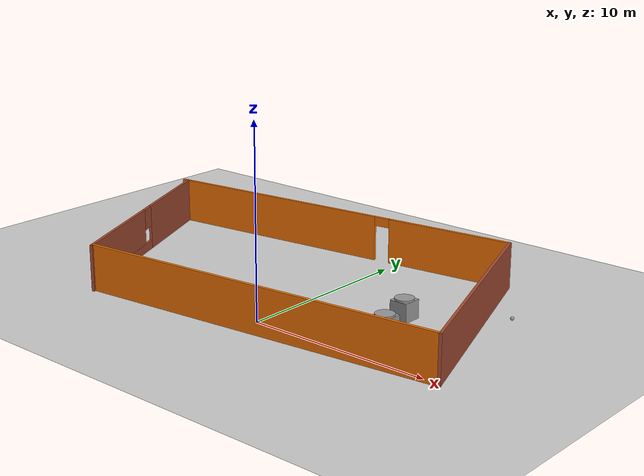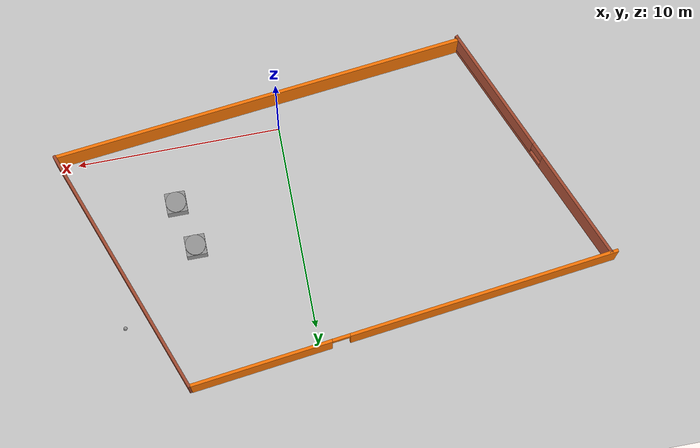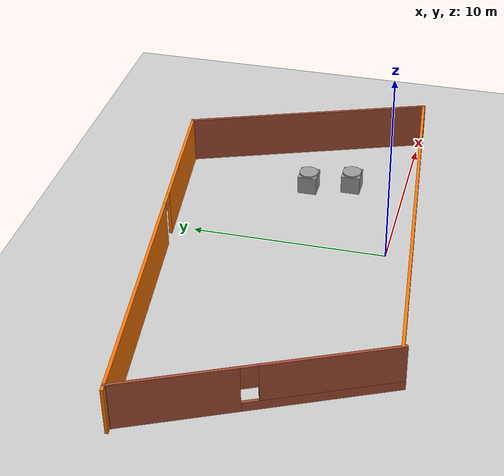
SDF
<sdf version="1.6">
 <world name="default">
  <plugin name="hello" filename="libhello.so"/>
  <light name="sun" type="directional">
   <pose>0 0 10 0 -0 0</pose>
   <diffuse>0.8 0.8 0.8 1</diffuse>
   <specular>0.2 0.2 0.2 1</specular>
   <attenuation>
    <range>1000</range>
    <constant>0.9</constant>
    <linear>0.01</linear>
    <quadratic>0.001</quadratic>
   </attenuation>
   <direction>-0.5 0.1 -0.9</direction>
  </light>
  <model name="ground_plane">
   <static>1</static>
   <link name="link">
    <collision name="collision">
     <geometry><plane><normal>0 0 1</normal><size>100 100</size></plane></geometry>
     <surface>
      <contact><collide_bitmask>65535</collide_bitmask></contact>
      <friction><ode><mu>100</mu><mu2>50</mu2></ode></friction>
     </surface>
    </collision>
    <visual name="visual">
     <cast_shadows>0</cast_shadows>
     <geometry><plane><normal>0 0 1</normal><size>100 100</size></plane></geometry>
     <material>
      <script><uri>file://media/materials/scripts/gazebo.material</uri><name>Gazebo/Grey</name></script>
     </material>
    </visual>
   </link>
  </model>
  <gravity>0 0 -9.8</gravity>
  <magnetic_field>6e-06 2.3e-05 -4.2e-05</magnetic_field>
  <atmosphere type="adiabatic"/>
  <physics name="default_physics" default="0" type="ode">
   <max_step_size>0.001</max_step_size>
   <real_time_factor>1</real_time_factor>
   <real_time_update_rate>1000</real_time_update_rate>
  </physics>
  <scene><ambient>0.4 0.4 0.4 1</ambient><background>0.7 0.7 0.7 1</background><shadows>1</shadows></scene>
  <spherical_coordinates>
   <surface_model>EARTH_WGS84</surface_model>
   <latitude_deg>0</latitude_deg>
   <longitude_deg>0</longitude_deg>
   <elevation>0</elevation>
   <heading_deg>0</heading_deg>
  </spherical_coordinates>
  <model name="building">
   <pose>-1.93167 4.7603 0 0 -0 0</pose>
   <link name="Wall_0">
    <pose>-9.99203 -1.31689 0 0 0 -1.14916</pose>
    <visual name="Wall_0_Visual_0">
     <pose>-3.64378 0 1.25 0 -0 0</pose>
     <geometry><box><size>5.72388 0.15 2.5</size></box></geometry>
     <material>
      <script><uri>file://media/materials/scripts/gazebo.material</uri><name>Gazebo/Bricks</name></script>
      <ambient>1 1 1 1</ambient>
     </material>
     <meta><layer>0</layer></meta>
    </visual>
    <collision name="Wall_0_Collision_0">
     <geometry><box><size>5.72388 0.15 2.5</size></box></geometry>
     <pose>-3.64378 0 1.25 0 -0 0</pose>
    </collision>
    <visual name="Wall_0_Visual_1">
     <pose>2.86194 0 0.25 0 -0 0</pose>
     <geometry><box><size>7.28755 0.15 0.5</size></box></geometry>
     <material>
      <script><uri>file://media/materials/scripts/gazebo.material</uri><name>Gazebo/Bricks</name></script>
      <ambient>1 1 1 1</ambient>
     </material>
     <meta><layer>0</layer></meta>
    </visual>
    <collision name="Wall_0_Collision_1">
     <geometry><box><size>7.28755 0.15 0.5</size></box></geometry>
     <pose>2.86194 0 0.25 0 -0 0</pose>
    </collision>
    <visual name="Wall_0_Visual_2">
     <pose>3.26194 0 1.5 0 -0 0</pose>
     <geometry><box><size>6.48755 0.15 2</size></box></geometry>
     <material>
      <script><uri>file://media/materials/scripts/gazebo.material</uri><name>Gazebo/Bricks</name></script>
      <ambient>1 1 1 1</ambient>
     </material>
     <meta><layer>0</layer></meta>
    </visual>
    <collision name="Wall_0_Collision_2">
     <geometry><box><size>6.48755 0.15 2</size></box></geometry>
     <pose>3.26194 0 1.5 0 -0 0</pose>
    </collision>
    <visual name="Wall_0_Visual_3">
     <pose>-0.381833 0 1.9 0 -0 0</pose>
     <geometry><box><size>0.8 0.15 1.2</size></box></geometry>
     <material>
      <script><uri>file://media/materials/scripts/gazebo.material</uri><name>Gazebo/Bricks</name></script>
      <ambient>1 1 1 1</ambient>
     </material>
     <meta><layer>0</layer></meta>
    </visual>
    <collision name="Wall_0_Collision_3">
     <geometry><box><size>0.8 0.15 1.2</size></box></geometry>
     <pose>-0.381833 0 1.9 0 -0 0</pose>
    </collision>
   </link>
   <link name="Wall_1">
    <collision name="Wall_1_Collision">
     <geometry><box><size>20.3706 0.15 2.5</size></box></geometry>
     <pose>0 0 1.25 0 -0 0</pose>
    </collision>
    <visual name="Wall_1_Visual">
     <pose>0 0 1.25 0 -0 0</pose>
     <geometry><box><size>20.3706 0.15 2.5</size></box></geometry>
     <material>
      <script><uri>file://media/materials/scripts/gazebo.material</uri><name>Gazebo/Grey</name></script>
      <ambient>0.996078 0.47451 0.0196078 1</ambient>
     </material>
     <meta><layer>0</layer></meta>
    </visual>
    <pose>2.69396 -5.98411 0 0 -0 0.105378</pose>
   </link>
   <link name="Wall_2">
    <collision name="Wall_2_Collision">
     <geometry><box><size>13.0387 0.15 2.5</size></box></geometry>
     <pose>0 0 1.25 0 -0 0</pose>
    </collision>
    <visual name="Wall_2_Visual">
     <pose>0 0 1.25 0 -0 0</pose>
     <geometry><box><size>13.0387 0.15 2.5</size></box></geometry>
     <material>
      <script><uri>file://media/materials/scripts/gazebo.material</uri><name>Gazebo/Bricks</name></script>
      <ambient>1 1 1 1</ambient>
     </material>
     <meta><layer>0</layer></meta>
    </visual>
    <pose>10.6763 1.13335 0 0 -0 1.92063</pose>
   </link>
   <link name="Wall_3">
    <pose>-2.28344 5.86901 0 0 0 -3.01802</pose>
    <visual name="Wall_3_Visual_0">
     <pose>-7.20915 0 1.25 0 -0 0</pose>
     <geometry><box><size>7.12305 0.15 2.5</size></box></geometry>
     <material>
      <script><uri>file://media/materials/scripts/gazebo.material</uri><name>Gazebo/Grey</name></script>
      <ambient>0.996078 0.47451 0.0196078 1</ambient>
     </material>
     <meta><layer>0</layer></meta>
    </visual>
    <collision name="Wall_3_Collision_0">
     <geometry><box><size>7.12305 0.15 2.5</size></box></geometry>
     <pose>-7.20915 0 1.25 0 -0 0</pose>
    </collision>
    <visual name="Wall_3_Visual_1">
     <pose>4.01152 0 1.25 0 -0 0</pose>
     <geometry><box><size>13.5183 0.15 2.5</size></box></geometry>
     <material>
      <script><uri>file://media/materials/scripts/gazebo.material</uri><name>Gazebo/Grey</name></script>
      <ambient>0.996078 0.47451 0.0196078 1</ambient>
     </material>
     <meta><layer>0</layer></meta>
    </visual>
    <collision name="Wall_3_Collision_1">
     <geometry><box><size>13.5183 0.15 2.5</size></box></geometry>
     <pose>4.01152 0 1.25 0 -0 0</pose>
    </collision>
    <visual name="Wall_3_Visual_2">
     <pose>-3.19763 0 2.25 0 -0 0</pose>
     <geometry><box><size>0.9 0.15 0.5</size></box></geometry>
     <material>
      <script><uri>file://media/materials/scripts/gazebo.material</uri><name>Gazebo/Grey</name></script>
      <ambient>0.996078 0.47451 0.0196078 1</ambient>
     </material>
     <meta><layer>0</layer></meta>
    </visual>
    <collision name="Wall_3_Collision_2">
     <geometry><box><size>0.9 0.15 0.5</size></box></geometry>
     <pose>-3.19763 0 2.25 0 -0 0</pose>
    </collision>
   </link>
   <link name="Wall_4">
    <collision name="Wall_4_Collision">
     <geometry><box><size>0.15 0.15 2.5</size></box></geometry>
     <pose>0 0 1.25 0 -0 0</pose>
    </collision>
    <visual name="Wall_4_Visual">
     <pose>0 0 1.25 0 -0 0</pose>
     <geometry><box><size>0.15 0.15 2.5</size></box></geometry>
     <material>
      <script><uri>file://media/materials/scripts/gazebo.material</uri><name>Gazebo/Grey</name></script>
      <ambient>1 1 1 1</ambient>
     </material>
     <meta><layer>0</layer></meta>
    </visual>
    <pose>-12.6238 4.55064 0 0 -0 0</pose>
   </link>
   <link name="Wall_5">
    <collision name="Wall_5_Collision">
     <geometry><box><size>0.15 0.15 2.5</size></box></geometry>
     <pose>0 0 1.25 0 -0 0</pose>
    </collision>
    <visual name="Wall_5_Visual">
     <pose>0 0 1.25 0 -0 0</pose>
     <geometry><box><size>0.15 0.15 2.5</size></box></geometry>
     <material>
      <script><uri>file://media/materials/scripts/gazebo.material</uri><name>Gazebo/Grey</name></script>
      <ambient>1 1 1 1</ambient>
     </material>
     <meta><layer>0</layer></meta>
    </visual>
    <pose>-12.6238 4.55064 0 0 -0 0</pose>
   </link>
   <static>1</static>
  </model>
  <model name="BarricadeModel">
   <link name="link_7">
    <pose>0 -0 -0.25 0 -0 0</pose>
    <inertial>
     <mass>1</mass>
     <inertia>
      <ixx>0.166667</ixx>
      <ixy>0</ixy>
      <ixz>0</ixz>
      <iyy>0.166667</iyy>
      <iyz>0</iyz>
      <izz>0.166667</izz>
     </inertia>
    </inertial>
    <visual name="visual">
     <geometry><box><size>1 1 1</size></box></geometry>
     <material>
      <lighting>1</lighting>
      <script><uri>file://media/materials/scripts/gazebo.material</uri><name>Gazebo/Grey</name></script>
      <shader type="pixel"><normal_map>__default__</normal_map></shader>
      <ambient>0.3 0.3 0.3 1</ambient>
      <diffuse>0.7 0.7 0.7 1</diffuse>
      <specular>0.01 0.01 0.01 1</specular>
      <emissive>0 0 0 1</emissive>
     </material>
    </visual>
    <collision name="collision">
     <geometry><box><size>1 1 1</size></box></geometry>
     <surface>
      <friction>
       <ode><mu>1</mu><mu2>1</mu2><fdir1>0 0 0</fdir1><slip1>0</slip1><slip2>0</slip2></ode>
       <torsional>
        <coefficient>1</coefficient>
        <patch_radius>0</patch_radius>
        <surface_radius>0</surface_radius>
        <use_patch_radius>1</use_patch_radius>
        <ode><slip>0</slip></ode>
       </torsional>
      </friction>
      <bounce><restitution_coefficient>0</restitution_coefficient><threshold>1e+06</threshold></bounce>
      <contact>
       <collide_without_contact>0</collide_without_contact>
       <collide_without_contact_bitmask>1</collide_without_contact_bitmask>
       <collide_bitmask>1</collide_bitmask>
       <ode>
        <soft_cfm>0</soft_cfm>
        <soft_erp>0.2</soft_erp>
        <kp>1e+13</kp>
        <kd>1</kd>
        <max_vel>0.01</max_vel>
        <min_depth>0</min_depth>
       </ode>
       <bullet>
        <split_impulse>1</split_impulse>
        <split_impulse_penetration_threshold>-0.01</split_impulse_penetration_threshold>
        <soft_cfm>0</soft_cfm>
        <soft_erp>0.2</soft_erp>
        <kp>1e+13</kp>
        <kd>1</kd>
       </bullet>
      </contact>
     </surface>
    </collision>
   </link>
   <link name="link_8">
    <pose>0 -0 0.25 0 -0 0</pose>
    <inertial>
     <mass>1</mass>
     <inertia><ixx>0.145833</ixx><ixy>0</ixy><ixz>0</ixz><iyy>0.145833</iyy><iyz>0</iyz><izz>0.125</izz></inertia>
    </inertial>
    <visual name="visual">
     <geometry><cylinder><radius>0.5</radius><length>0.2</length></cylinder></geometry>
     <material>
      <lighting>1</lighting>
      <script><uri>file://media/materials/scripts/gazebo.material</uri><name>Gazebo/Grey</name></script>
      <shader type="pixel"><normal_map>__default__</normal_map></shader>
      <ambient>0.3 0.3 0.3 1</ambient>
      <diffuse>0.7 0.7 0.7 1</diffuse>
      <specular>0.01 0.01 0.01 1</specular>
      <emissive>0 0 0 1</emissive>
     </material>
    </visual>
    <collision name="collision">
     <geometry><cylinder><radius>0.5</radius><length>0.2</length></cylinder></geometry>
     <surface>
      <friction>
       <ode><mu>1</mu><mu2>1</mu2><fdir1>0 0 0</fdir1><slip1>0</slip1><slip2>0</slip2></ode>
       <torsional>
        <coefficient>1</coefficient>
        <patch_radius>0</patch_radius>
        <surface_radius>0</surface_radius>
        <use_patch_radius>1</use_patch_radius>
        <ode><slip>0</slip></ode>
       </torsional>
      </friction>
      <bounce><restitution_coefficient>0</restitution_coefficient><threshold>1e+06</threshold></bounce>
      <contact>
       <collide_without_contact>0</collide_without_contact>
       <collide_without_contact_bitmask>1</collide_without_contact_bitmask>
       <collide_bitmask>1</collide_bitmask>
       <ode>
        <soft_cfm>0</soft_cfm>
        <soft_erp>0.2</soft_erp>
        <kp>1e+13</kp>
        <kd>1</kd>
        <max_vel>0.01</max_vel>
        <min_depth>0</min_depth>
       </ode>
       <bullet>
        <split_impulse>1</split_impulse>
        <split_impulse_penetration_threshold>-0.01</split_impulse_penetration_threshold>
        <soft_cfm>0</soft_cfm>
        <soft_erp>0.2</soft_erp>
        <kp>1e+13</kp>
        <kd>1</kd>
       </bullet>
      </contact>
     </surface>
    </collision>
   </link>
   <joint name="link_7_JOINT_0" type="revolute">
    <parent>link_7</parent>
    <child>link_8</child>
    <axis>
     <xyz>0 0 1</xyz>
     <use_parent_model_frame>0</use_parent_model_frame>
     <limit>
      <lower>-1.79769e+308</lower>
      <upper>1.79769e+308</upper>
      <effort>-1</effort>
      <velocity>-1</velocity>
     </limit>
     <dynamics>
      <spring_reference>0</spring_reference>
      <spring_stiffness>0</spring_stiffness>
      <damping>0</damping>
      <friction>0</friction>
     </dynamics>
    </axis>
    <physics>
     <ode><limit><cfm>0</cfm><erp>0.2</erp></limit><suspension><cfm>0</cfm><erp>0.2</erp></suspension></ode>
    </physics>
   </joint>
   <static>0</static>
   <pose>5.60962 2.82935 0.75 -1e-06 -1e-06 -0.000825</pose>
  </model>
  <model name="BarricadeModel_0">
   <link name="link_7">
    <pose>0 -0 -0.25 0 -0 0</pose>
    <inertial>
     <mass>1</mass>
     <inertia>
      <ixx>0.166667</ixx>
      <ixy>0</ixy>
      <ixz>0</ixz>
      <iyy>0.166667</iyy>
      <iyz>0</iyz>
      <izz>0.166667</izz>
     </inertia>
    </inertial>
    <visual name="visual">
     <geometry><box><size>1 1 1</size></box></geometry>
     <material>
      <lighting>1</lighting>
      <script><uri>file://media/materials/scripts/gazebo.material</uri><name>Gazebo/Grey</name></script>
      <shader type="pixel"><normal_map>__default__</normal_map></shader>
      <ambient>0.3 0.3 0.3 1</ambient>
      <diffuse>0.7 0.7 0.7 1</diffuse>
      <specular>0.01 0.01 0.01 1</specular>
      <emissive>0 0 0 1</emissive>
     </material>
    </visual>
    <collision name="collision">
     <geometry><box><size>1 1 1</size></box></geometry>
     <surface>
      <friction>
       <ode><mu>1</mu><mu2>1</mu2><fdir1>0 0 0</fdir1><slip1>0</slip1><slip2>0</slip2></ode>
       <torsional>
        <coefficient>1</coefficient>
        <patch_radius>0</patch_radius>
        <surface_radius>0</surface_radius>
        <use_patch_radius>1</use_patch_radius>
        <ode><slip>0</slip></ode>
       </torsional>
      </friction>
      <bounce><restitution_coefficient>0</restitution_coefficient><threshold>1e+06</threshold></bounce>
      <contact>
       <collide_without_contact>0</collide_without_contact>
       <collide_without_contact_bitmask>1</collide_without_contact_bitmask>
       <collide_bitmask>1</collide_bitmask>
       <ode>
        <soft_cfm>0</soft_cfm>
        <soft_erp>0.2</soft_erp>
        <kp>1e+13</kp>
        <kd>1</kd>
        <max_vel>0.01</max_vel>
        <min_depth>0</min_depth>
       </ode>
       <bullet>
        <split_impulse>1</split_impulse>
        <split_impulse_penetration_threshold>-0.01</split_impulse_penetration_threshold>
        <soft_cfm>0</soft_cfm>
        <soft_erp>0.2</soft_erp>
        <kp>1e+13</kp>
        <kd>1</kd>
       </bullet>
      </contact>
     </surface>
    </collision>
   </link>
   <link name="link_8">
    <pose>0 -0 0.25 0 -0 0</pose>
    <inertial>
     <mass>1</mass>
     <inertia><ixx>0.145833</ixx><ixy>0</ixy><ixz>0</ixz><iyy>0.145833</iyy><iyz>0</iyz><izz>0.125</izz></inertia>
    </inertial>
    <visual name="visual">
     <geometry><cylinder><radius>0.5</radius><length>0.2</length></cylinder></geometry>
     <material>
      <lighting>1</lighting>
      <script><uri>file://media/materials/scripts/gazebo.material</uri><name>Gazebo/Grey</name></script>
      <shader type="pixel"><normal_map>__default__</normal_map></shader>
      <ambient>0.3 0.3 0.3 1</ambient>
      <diffuse>0.7 0.7 0.7 1</diffuse>
      <specular>0.01 0.01 0.01 1</specular>
      <emissive>0 0 0 1</emissive>
     </material>
    </visual>
    <collision name="collision">
     <geometry><cylinder><radius>0.5</radius><length>0.2</length></cylinder></geometry>
     <surface>
      <friction>
       <ode><mu>1</mu><mu2>1</mu2><fdir1>0 0 0</fdir1><slip1>0</slip1><slip2>0</slip2></ode>
       <torsional>
        <coefficient>1</coefficient>
        <patch_radius>0</patch_radius>
        <surface_radius>0</surface_radius>
        <use_patch_radius>1</use_patch_radius>
        <ode><slip>0</slip></ode>
       </torsional>
      </friction>
      <bounce><restitution_coefficient>0</restitution_coefficient><threshold>1e+06</threshold></bounce>
      <contact>
       <collide_without_contact>0</collide_without_contact>
       <collide_without_contact_bitmask>1</collide_without_contact_bitmask>
       <collide_bitmask>1</collide_bitmask>
       <ode>
        <soft_cfm>0</soft_cfm>
        <soft_erp>0.2</soft_erp>
        <kp>1e+13</kp>
        <kd>1</kd>
        <max_vel>0.01</max_vel>
        <min_depth>0</min_depth>
       </ode>
       <bullet>
        <split_impulse>1</split_impulse>
        <split_impulse_penetration_threshold>-0.01</split_impulse_penetration_threshold>
        <soft_cfm>0</soft_cfm>
        <soft_erp>0.2</soft_erp>
        <kp>1e+13</kp>
        <kd>1</kd>
       </bullet>
      </contact>
     </surface>
    </collision>
   </link>
   <joint name="link_7_JOINT_0" type="revolute">
    <parent>link_7</parent>
    <child>link_8</child>
    <axis>
     <xyz>0 0 1</xyz>
     <use_parent_model_frame>0</use_parent_model_frame>
     <limit>
      <lower>-1.79769e+308</lower>
      <upper>1.79769e+308</upper>
      <effort>-1</effort>
      <velocity>-1</velocity>
     </limit>
     <dynamics>
      <spring_reference>0</spring_reference>
      <spring_stiffness>0</spring_stiffness>
      <damping>0</damping>
      <friction>0</friction>
     </dynamics>
    </axis>
    <physics>
     <ode><limit><cfm>0</cfm><erp>0.2</erp></limit><suspension><cfm>0</cfm><erp>0.2</erp></suspension></ode>
    </physics>
   </joint>
   <static>0</static>
   <pose>5.04623 5.08065 0.749999 -2e-06 -4e-06 -0.000823</pose>
  </model>
  <model name="my_ball">
   <link name="link_0">
    <inertial>
     <mass>1</mass>
     <inertia><ixx>0.1</ixx><ixy>0</ixy><ixz>0</ixz><iyy>0.1</iyy><iyz>0</iyz><izz>0.1</izz></inertia>
    </inertial>
    <visual name="visual">
     <geometry><sphere><radius>0.1</radius></sphere></geometry>
     <material>
      <lighting>1</lighting>
      <script><uri>file://media/materials/scripts/gazebo.material</uri><name>Gazebo/Grey</name></script>
      <shader type="pixel"><normal_map>__default__</normal_map></shader>
      <ambient>1 1 1 1</ambient>
      <diffuse>1 1 1 1</diffuse>
      <specular>1 1 1 1</specular>
      <emissive>1 1 1 1</emissive>
     </material>
    </visual>
    <collision name="collision">
     <geometry><sphere><radius>0.1</radius></sphere></geometry>
     <surface>
      <friction>
       <ode><mu>1</mu><mu2>1</mu2><fdir1>0 0 0</fdir1><slip1>0</slip1><slip2>0</slip2></ode>
       <torsional>
        <coefficient>1</coefficient>
        <patch_radius>0</patch_radius>
        <surface_radius>0</surface_radius>
        <use_patch_radius>1</use_patch_radius>
        <ode><slip>0</slip></ode>
       </torsional>
      </friction>
      <bounce><restitution_coefficient>0</restitution_coefficient><threshold>1e+06</threshold></bounce>
      <contact>
       <collide_without_contact>0</collide_without_contact>
       <collide_without_contact_bitmask>1</collide_without_contact_bitmask>
       <collide_bitmask>1</collide_bitmask>
       <ode>
        <soft_cfm>0</soft_cfm>
        <soft_erp>0.2</soft_erp>
        <kp>1e+13</kp>
        <kd>1</kd>
        <max_vel>0.01</max_vel>
        <min_depth>0</min_depth>
       </ode>
       <bullet>
        <split_impulse>1</split_impulse>
        <split_impulse_penetration_threshold>-0.01</split_impulse_penetration_threshold>
        <soft_cfm>0</soft_cfm>
        <soft_erp>0.2</soft_erp>
        <kp>1e+13</kp>
        <kd>1</kd>
       </bullet>
      </contact>
     </surface>
    </collision>
   </link>
   <static>0</static>
   <pose>9.13179 8.3626 0.1 0 -0 0</pose>
  </model>
  <plugin filename="libcollision_map_creator.so" name="collision_map_creator"/>
 </world>
</sdf>
